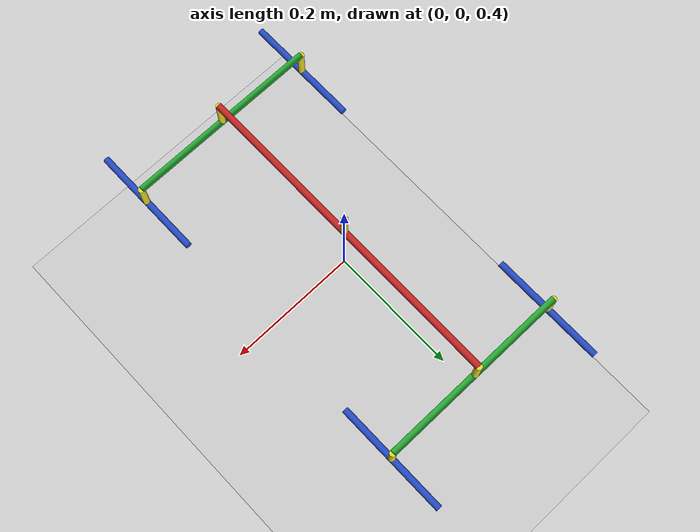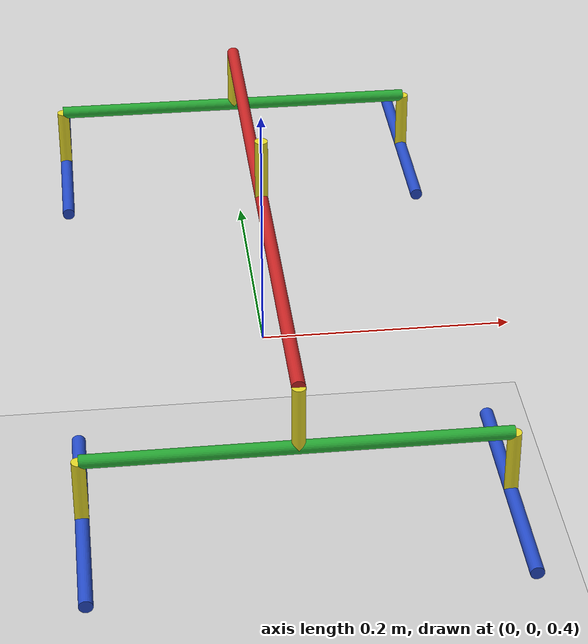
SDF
<?xml version="1.0" ?>

<sdf version="1.5">
  <world name="default">
    <include>
      <uri>model://ground_plane</uri>
    </include>
    <include>
      <uri>model://sun</uri>
    </include>

    <model name="joint_tree_layers">
      <self_collide>true</self_collide>

      <link name="link_0">
        <pose>0 0 0.53 1.5707963267948966 0 0</pose>
        <inertial>
          <mass>0.10602875205865551</mass>
          <inertia>
            <ixx>0.0022095950142556895</ixx>
            <iyy>0.0022095950142556895</iyy>
            <izz>1.325359400733194e-06</izz>
            <ixy>0.0</ixy>
            <ixz>0.0</ixz>
            <iyz>0.0</iyz>
          </inertia>
        </inertial>
        <collision name="collision">
          <geometry>
            <cylinder>
              <radius>0.005</radius>
              <length>0.5</length>
            </cylinder>
          </geometry>
          <surface>
            <contact>
              <ode>
                <min_depth>0.001</min_depth>
                <max_vel>0.1</max_vel>
                <kp>1e8</kp>
                <kd>1</kd>
              </ode>
            </contact>
          </surface>
        </collision>
        <visual name="visual">
          <geometry>
            <cylinder>
              <radius>0.005</radius>
              <length>0.5</length>
            </cylinder>
          </geometry>
          <material>
            <script>
              <uri>file://media/materials/scripts/gazebo.material</uri>
              <name>Gazebo/Red</name>
            </script>
          </material>
        </visual>
      </link>
      <link name="linkvert_0">
        <pose>0 0 0.555  0 0 0 </pose>
        <inertial>
          <mass>0.010602875205865553</mass>
          <inertia>
            <ixx>2.275200304591984e-06</ixx>
            <iyy>2.275200304591984e-06</iyy>
            <izz>1.3253594007331942e-07</izz>
            <ixy>0.0</ixy>
            <ixz>0.0</ixz>
            <iyz>0.0</iyz>
          </inertia>
        </inertial>
        <collision name="collision">
          <geometry>
            <cylinder>
              <radius>0.005</radius>
              <length>0.03</length>
            </cylinder>
          </geometry>
          <surface>
            <contact>
              <ode>
                <min_depth>0.001</min_depth>
                <max_vel>0.1</max_vel>
                <kp>1e8</kp>
                <kd>1</kd>
              </ode>
            </contact>
          </surface>
        </collision>
        <visual name="visual">
          <geometry>
            <cylinder>
              <radius>0.005</radius>
              <length>0.05</length>
            </cylinder>
          </geometry>
          <material>
            <script>
              <uri>file://media/materials/scripts/gazebo.material</uri>
              <name>Gazebo/Yellow</name>
            </script>
          </material>
        </visual>
      </link>

        <joint name="vertChild_0" type="ball">
          <parent>linkvert_0</parent>
          <child>link_0</child>
          <thread_pitch>-0.1</thread_pitch>
          <axis>
            <xyz>1 0 0</xyz>
            <dynamics>
              <damping>0.1</damping>
           </dynamics>
          </axis>
          <physics>
            <ode>
              <cfm_damping>1</cfm_damping>
            </ode>
          </physics>
        </joint>

        <joint name="vertParent_0" type="revolute">
          <pose>0 0 0.025 0 0 0</pose>
          <parent>world</parent>
          <child>linkvert_0</child>
          <axis>
            <xyz>0 0 1</xyz>
            <dynamics>
              <friction>0.01</friction>
            </dynamics>
          </axis>
        </joint>

      <link name="link_1">
        <pose>0 0.25 0.48000000000000004 0 1.5707963267948966 0</pose>
        <inertial>
          <mass>0.06361725123519331</mass>
          <inertia>
            <ixx>0.0004775269920841698</ixx>
            <iyy>0.0004775269920841698</iyy>
            <izz>7.952156404399164e-07</izz>
            <ixy>0.0</ixy>
            <ixz>0.0</ixz>
            <iyz>0.0</iyz>
          </inertia>
        </inertial>
        <collision name="collision">
          <geometry>
            <cylinder>
              <radius>0.005</radius>
              <length>0.3</length>
            </cylinder>
          </geometry>
          <surface>
            <contact>
              <ode>
                <min_depth>0.001</min_depth>
                <max_vel>0.1</max_vel>
                <kp>1e8</kp>
                <kd>1</kd>
              </ode>
            </contact>
          </surface>
        </collision>
        <visual name="visual">
          <geometry>
            <cylinder>
              <radius>0.005</radius>
              <length>0.3</length>
            </cylinder>
          </geometry>
          <material>
            <script>
              <uri>file://media/materials/scripts/gazebo.material</uri>
              <name>Gazebo/Green</name>
            </script>
          </material>
        </visual>
      </link>
      <link name="linkvert_1">
        <pose>0 0.25 0.505  0 0 0 </pose>
        <inertial>
          <mass>0.010602875205865553</mass>
          <inertia>
            <ixx>2.275200304591984e-06</ixx>
            <iyy>2.275200304591984e-06</iyy>
            <izz>1.3253594007331942e-07</izz>
            <ixy>0.0</ixy>
            <ixz>0.0</ixz>
            <iyz>0.0</iyz>
          </inertia>
        </inertial>
        <collision name="collision">
          <geometry>
            <cylinder>
              <radius>0.005</radius>
              <length>0.03</length>
            </cylinder>
          </geometry>
          <surface>
            <contact>
              <ode>
                <min_depth>0.001</min_depth>
                <max_vel>0.1</max_vel>
                <kp>1e8</kp>
                <kd>1</kd>
              </ode>
            </contact>
          </surface>
        </collision>
        <visual name="visual">
          <geometry>
            <cylinder>
              <radius>0.005</radius>
              <length>0.05</length>
            </cylinder>
          </geometry>
          <material>
            <script>
              <uri>file://media/materials/scripts/gazebo.material</uri>
              <name>Gazebo/Yellow</name>
            </script>
          </material>
        </visual>
      </link>

        <joint name="vertChild_1" type="ball">
          <parent>linkvert_1</parent>
          <child>link_1</child>
          <thread_pitch>-0.1</thread_pitch>
          <axis>
            <xyz>0 1 0</xyz>
            <dynamics>
              <damping>0.1</damping>
           </dynamics>
          </axis>
          <physics>
            <ode>
              <cfm_damping>1</cfm_damping>
            </ode>
          </physics>
        </joint>

        <joint name="vertParent_1" type="revolute">
          <pose>0 0 0.025 0 0 0</pose>
          <parent>link_0</parent>
          <child>linkvert_1</child>
          <axis>
            <xyz>0 1 0</xyz>
            <dynamics>
              <friction>0.01</friction>
            </dynamics>
          </axis>
        </joint>

      <link name="link_2">
        <pose>0 -0.25 0.48000000000000004 0 1.5707963267948966 0</pose>
        <inertial>
          <mass>0.06361725123519331</mass>
          <inertia>
            <ixx>0.0004775269920841698</ixx>
            <iyy>0.0004775269920841698</iyy>
            <izz>7.952156404399164e-07</izz>
            <ixy>0.0</ixy>
            <ixz>0.0</ixz>
            <iyz>0.0</iyz>
          </inertia>
        </inertial>
        <collision name="collision">
          <geometry>
            <cylinder>
              <radius>0.005</radius>
              <length>0.3</length>
            </cylinder>
          </geometry>
          <surface>
            <contact>
              <ode>
                <min_depth>0.001</min_depth>
                <max_vel>0.1</max_vel>
                <kp>1e8</kp>
                <kd>1</kd>
              </ode>
            </contact>
          </surface>
        </collision>
        <visual name="visual">
          <geometry>
            <cylinder>
              <radius>0.005</radius>
              <length>0.3</length>
            </cylinder>
          </geometry>
          <material>
            <script>
              <uri>file://media/materials/scripts/gazebo.material</uri>
              <name>Gazebo/Green</name>
            </script>
          </material>
        </visual>
      </link>
      <link name="linkvert_2">
        <pose>0 -0.25 0.505  0 0 0 </pose>
        <inertial>
          <mass>0.010602875205865553</mass>
          <inertia>
            <ixx>2.275200304591984e-06</ixx>
            <iyy>2.275200304591984e-06</iyy>
            <izz>1.3253594007331942e-07</izz>
            <ixy>0.0</ixy>
            <ixz>0.0</ixz>
            <iyz>0.0</iyz>
          </inertia>
        </inertial>
        <collision name="collision">
          <geometry>
            <cylinder>
              <radius>0.005</radius>
              <length>0.03</length>
            </cylinder>
          </geometry>
          <surface>
            <contact>
              <ode>
                <min_depth>0.001</min_depth>
                <max_vel>0.1</max_vel>
                <kp>1e8</kp>
                <kd>1</kd>
              </ode>
            </contact>
          </surface>
        </collision>
        <visual name="visual">
          <geometry>
            <cylinder>
              <radius>0.005</radius>
              <length>0.05</length>
            </cylinder>
          </geometry>
          <material>
            <script>
              <uri>file://media/materials/scripts/gazebo.material</uri>
              <name>Gazebo/Yellow</name>
            </script>
          </material>
        </visual>
      </link>

        <joint name="vertChild_2" type="ball">
          <parent>linkvert_2</parent>
          <child>link_2</child>
          <thread_pitch>-0.1</thread_pitch>
          <axis>
            <xyz>0 1 0</xyz>
            <dynamics>
              <damping>0.1</damping>
           </dynamics>
          </axis>
          <physics>
            <ode>
              <cfm_damping>1</cfm_damping>
            </ode>
          </physics>
        </joint>

        <joint name="vertParent_2" type="revolute">
          <pose>0 0 0.025 0 0 0</pose>
          <parent>link_0</parent>
          <child>linkvert_2</child>
          <axis>
            <xyz>0 1 0</xyz>
            <dynamics>
              <friction>0.01</friction>
            </dynamics>
          </axis>
        </joint>

      <link name="link_3">
        <pose>0.15 0.25 0.43000000000000005 1.5707963267948966 0 0</pose>
        <inertial>
          <mass>0.03817035074111599</mass>
          <inertia>
            <ixx>0.00010329851169314512</ixx>
            <iyy>0.00010329851169314512</iyy>
            <izz>4.771293842639499e-07</izz>
            <ixy>0.0</ixy>
            <ixz>0.0</ixz>
            <iyz>0.0</iyz>
          </inertia>
        </inertial>
        <collision name="collision">
          <geometry>
            <cylinder>
              <radius>0.005</radius>
              <length>0.18</length>
            </cylinder>
          </geometry>
          <surface>
            <contact>
              <ode>
                <min_depth>0.001</min_depth>
                <max_vel>0.1</max_vel>
                <kp>1e8</kp>
                <kd>1</kd>
              </ode>
            </contact>
          </surface>
        </collision>
        <visual name="visual">
          <geometry>
            <cylinder>
              <radius>0.005</radius>
              <length>0.18</length>
            </cylinder>
          </geometry>
          <material>
            <script>
              <uri>file://media/materials/scripts/gazebo.material</uri>
              <name>Gazebo/Blue</name>
            </script>
          </material>
        </visual>
      </link>
      <link name="linkvert_3">
        <pose>0.15 0.25 0.45500000000000007  0 0 0 </pose>
        <inertial>
          <mass>0.010602875205865553</mass>
          <inertia>
            <ixx>2.275200304591984e-06</ixx>
            <iyy>2.275200304591984e-06</iyy>
            <izz>1.3253594007331942e-07</izz>
            <ixy>0.0</ixy>
            <ixz>0.0</ixz>
            <iyz>0.0</iyz>
          </inertia>
        </inertial>
        <collision name="collision">
          <geometry>
            <cylinder>
              <radius>0.005</radius>
              <length>0.03</length>
            </cylinder>
          </geometry>
          <surface>
            <contact>
              <ode>
                <min_depth>0.001</min_depth>
                <max_vel>0.1</max_vel>
                <kp>1e8</kp>
                <kd>1</kd>
              </ode>
            </contact>
          </surface>
        </collision>
        <visual name="visual">
          <geometry>
            <cylinder>
              <radius>0.005</radius>
              <length>0.05</length>
            </cylinder>
          </geometry>
          <material>
            <script>
              <uri>file://media/materials/scripts/gazebo.material</uri>
              <name>Gazebo/Yellow</name>
            </script>
          </material>
        </visual>
      </link>

        <joint name="vertParent_3" type="revolute">
          <pose>0 0 0.025 0 0 0</pose>
          <parent>link_1</parent>
          <child>linkvert_3</child>
          <axis>
            <xyz>1 0 0</xyz>
            <dynamics>
              <friction>0.01</friction>
            </dynamics>
          </axis>
        </joint>

      <link name="link_4">
        <pose>-0.15 0.25 0.43000000000000005 1.5707963267948966 0 0</pose>
        <inertial>
          <mass>0.03817035074111599</mass>
          <inertia>
            <ixx>0.00010329851169314512</ixx>
            <iyy>0.00010329851169314512</iyy>
            <izz>4.771293842639499e-07</izz>
            <ixy>0.0</ixy>
            <ixz>0.0</ixz>
            <iyz>0.0</iyz>
          </inertia>
        </inertial>
        <collision name="collision">
          <geometry>
            <cylinder>
              <radius>0.005</radius>
              <length>0.18</length>
            </cylinder>
          </geometry>
          <surface>
            <contact>
              <ode>
                <min_depth>0.001</min_depth>
                <max_vel>0.1</max_vel>
                <kp>1e8</kp>
                <kd>1</kd>
              </ode>
            </contact>
          </surface>
        </collision>
        <visual name="visual">
          <geometry>
            <cylinder>
              <radius>0.005</radius>
              <length>0.18</length>
            </cylinder>
          </geometry>
          <material>
            <script>
              <uri>file://media/materials/scripts/gazebo.material</uri>
              <name>Gazebo/Blue</name>
            </script>
          </material>
        </visual>
      </link>
      <link name="linkvert_4">
        <pose>-0.15 0.25 0.45500000000000007  0 0 0 </pose>
        <inertial>
          <mass>0.010602875205865553</mass>
          <inertia>
            <ixx>2.275200304591984e-06</ixx>
            <iyy>2.275200304591984e-06</iyy>
            <izz>1.3253594007331942e-07</izz>
            <ixy>0.0</ixy>
            <ixz>0.0</ixz>
            <iyz>0.0</iyz>
          </inertia>
        </inertial>
        <collision name="collision">
          <geometry>
            <cylinder>
              <radius>0.005</radius>
              <length>0.03</length>
            </cylinder>
          </geometry>
          <surface>
            <contact>
              <ode>
                <min_depth>0.001</min_depth>
                <max_vel>0.1</max_vel>
                <kp>1e8</kp>
                <kd>1</kd>
              </ode>
            </contact>
          </surface>
        </collision>
        <visual name="visual">
          <geometry>
            <cylinder>
              <radius>0.005</radius>
              <length>0.05</length>
            </cylinder>
          </geometry>
          <material>
            <script>
              <uri>file://media/materials/scripts/gazebo.material</uri>
              <name>Gazebo/Yellow</name>
            </script>
          </material>
        </visual>
      </link>

        <joint name="vertParent_4" type="revolute">
          <pose>0 0 0.025 0 0 0</pose>
          <parent>link_1</parent>
          <child>linkvert_4</child>
          <axis>
            <xyz>1 0 0</xyz>
            <dynamics>
              <friction>0.01</friction>
            </dynamics>
          </axis>
        </joint>

      <link name="link_5">
        <pose>0.15 -0.25 0.43000000000000005 1.5707963267948966 0 0</pose>
        <inertial>
          <mass>0.03817035074111599</mass>
          <inertia>
            <ixx>0.00010329851169314512</ixx>
            <iyy>0.00010329851169314512</iyy>
            <izz>4.771293842639499e-07</izz>
            <ixy>0.0</ixy>
            <ixz>0.0</ixz>
            <iyz>0.0</iyz>
          </inertia>
        </inertial>
        <collision name="collision">
          <geometry>
            <cylinder>
              <radius>0.005</radius>
              <length>0.18</length>
            </cylinder>
          </geometry>
          <surface>
            <contact>
              <ode>
                <min_depth>0.001</min_depth>
                <max_vel>0.1</max_vel>
                <kp>1e8</kp>
                <kd>1</kd>
              </ode>
            </contact>
          </surface>
        </collision>
        <visual name="visual">
          <geometry>
            <cylinder>
              <radius>0.005</radius>
              <length>0.18</length>
            </cylinder>
          </geometry>
          <material>
            <script>
              <uri>file://media/materials/scripts/gazebo.material</uri>
              <name>Gazebo/Blue</name>
            </script>
          </material>
        </visual>
      </link>
      <link name="linkvert_5">
        <pose>0.15 -0.25 0.45500000000000007  0 0 0 </pose>
        <inertial>
          <mass>0.010602875205865553</mass>
          <inertia>
            <ixx>2.275200304591984e-06</ixx>
            <iyy>2.275200304591984e-06</iyy>
            <izz>1.3253594007331942e-07</izz>
            <ixy>0.0</ixy>
            <ixz>0.0</ixz>
            <iyz>0.0</iyz>
          </inertia>
        </inertial>
        <collision name="collision">
          <geometry>
            <cylinder>
              <radius>0.005</radius>
              <length>0.03</length>
            </cylinder>
          </geometry>
          <surface>
            <contact>
              <ode>
                <min_depth>0.001</min_depth>
                <max_vel>0.1</max_vel>
                <kp>1e8</kp>
                <kd>1</kd>
              </ode>
            </contact>
          </surface>
        </collision>
        <visual name="visual">
          <geometry>
            <cylinder>
              <radius>0.005</radius>
              <length>0.05</length>
            </cylinder>
          </geometry>
          <material>
            <script>
              <uri>file://media/materials/scripts/gazebo.material</uri>
              <name>Gazebo/Yellow</name>
            </script>
          </material>
        </visual>
      </link>

        <joint name="vertParent_5" type="revolute">
          <pose>0 0 0.025 0 0 0</pose>
          <parent>link_2</parent>
          <child>linkvert_5</child>
          <axis>
            <xyz>1 0 0</xyz>
            <dynamics>
              <friction>0.01</friction>
            </dynamics>
          </axis>
        </joint>

      <link name="link_6">
        <pose>-0.15 -0.25 0.43000000000000005 1.5707963267948966 0 0</pose>
        <inertial>
          <mass>0.03817035074111599</mass>
          <inertia>
            <ixx>0.00010329851169314512</ixx>
            <iyy>0.00010329851169314512</iyy>
            <izz>4.771293842639499e-07</izz>
            <ixy>0.0</ixy>
            <ixz>0.0</ixz>
            <iyz>0.0</iyz>
          </inertia>
        </inertial>
        <collision name="collision">
          <geometry>
            <cylinder>
              <radius>0.005</radius>
              <length>0.18</length>
            </cylinder>
          </geometry>
          <surface>
            <contact>
              <ode>
                <min_depth>0.001</min_depth>
                <max_vel>0.1</max_vel>
                <kp>1e8</kp>
                <kd>1</kd>
              </ode>
            </contact>
          </surface>
        </collision>
        <visual name="visual">
          <geometry>
            <cylinder>
              <radius>0.005</radius>
              <length>0.18</length>
            </cylinder>
          </geometry>
          <material>
            <script>
              <uri>file://media/materials/scripts/gazebo.material</uri>
              <name>Gazebo/Blue</name>
            </script>
          </material>
        </visual>
      </link>
      <link name="linkvert_6">
        <pose>-0.15 -0.25 0.45500000000000007  0 0 0 </pose>
        <inertial>
          <mass>0.010602875205865553</mass>
          <inertia>
            <ixx>2.275200304591984e-06</ixx>
            <iyy>2.275200304591984e-06</iyy>
            <izz>1.3253594007331942e-07</izz>
            <ixy>0.0</ixy>
            <ixz>0.0</ixz>
            <iyz>0.0</iyz>
          </inertia>
        </inertial>
        <collision name="collision">
          <geometry>
            <cylinder>
              <radius>0.005</radius>
              <length>0.03</length>
            </cylinder>
          </geometry>
          <surface>
            <contact>
              <ode>
                <min_depth>0.001</min_depth>
                <max_vel>0.1</max_vel>
                <kp>1e8</kp>
                <kd>1</kd>
              </ode>
            </contact>
          </surface>
        </collision>
        <visual name="visual">
          <geometry>
            <cylinder>
              <radius>0.005</radius>
              <length>0.05</length>
            </cylinder>
          </geometry>
          <material>
            <script>
              <uri>file://media/materials/scripts/gazebo.material</uri>
              <name>Gazebo/Yellow</name>
            </script>
          </material>
        </visual>
      </link>

        <joint name="vertParent_6" type="revolute">
          <pose>0 0 0.025 0 0 0</pose>
          <parent>link_2</parent>
          <child>linkvert_6</child>
          <axis>
            <xyz>1 0 0</xyz>
            <dynamics>
              <friction>0.01</friction>
            </dynamics>
          </axis>
        </joint>

    </model>
  </world>
</sdf>
